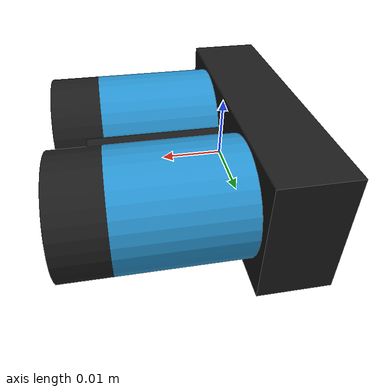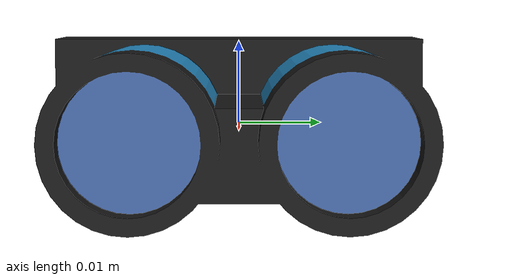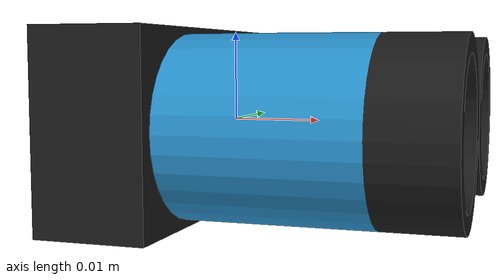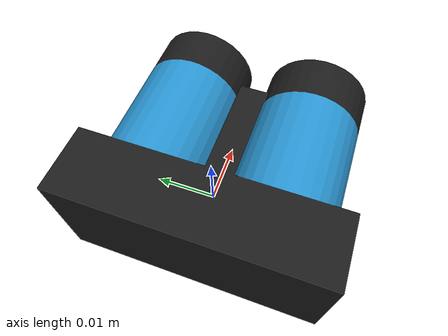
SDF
<?xml version="1.0" ?>
<sdf version="1.5">
  <model name="Lidar Lite v2">
    <pose>0 0 0 0 0 0</pose>
    <static>false</static>
    <link name="link">
      <inertial>
        <mass>0.016</mass>
        <inertia>
          <ixx>1</ixx>
          <ixy>0</ixy>
          <ixz>0</ixz>
          <iyy>1</iyy>
          <iyz>0</iyz>
          <izz>1</izz>
        </inertia>
      </inertial>

      <visual name="visual">
        <geometry>
          <mesh>
            <uri>model://lidar_lite_v2/meshes/lidar_lite_v2.dae</uri>
          </mesh>
	</geometry>
      </visual>
    </link>
  </model>
</sdf>
